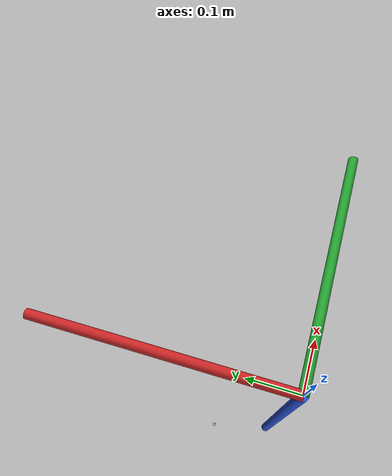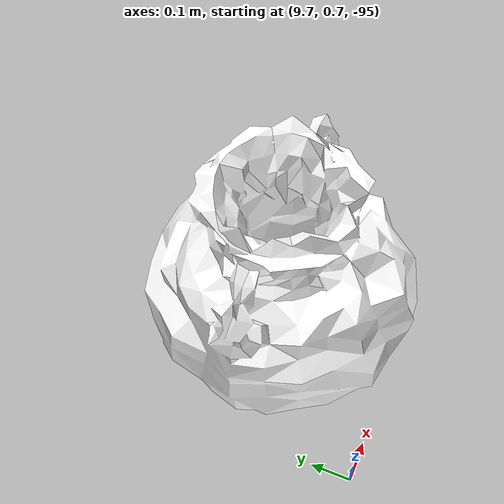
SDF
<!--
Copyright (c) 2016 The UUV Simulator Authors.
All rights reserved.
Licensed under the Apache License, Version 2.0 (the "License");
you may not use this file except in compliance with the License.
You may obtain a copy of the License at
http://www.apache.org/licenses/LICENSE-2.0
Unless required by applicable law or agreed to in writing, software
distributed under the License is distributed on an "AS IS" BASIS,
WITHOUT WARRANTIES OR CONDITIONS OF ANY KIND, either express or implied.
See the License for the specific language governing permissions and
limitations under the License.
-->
<sdf version="1.4">
 <world name="oceans_waves">
  <physics name="default_physics" default="true" type="ode">
   <max_step_size>0.002</max_step_size>
   <real_time_factor>1</real_time_factor>
   <real_time_update_rate>500</real_time_update_rate>
  </physics>
  <scene>
   <ambient>0.01 0.01 0.01 1.0</ambient>
   <sky><clouds><speed>12</speed></clouds></sky>
   <shadows>1</shadows>
  </scene>
  <gravity>0 0 -10</gravity>
  <light type="directional" name="sun1">
   <pose>50 0 150 0 0 0</pose>
   <diffuse>1 1 1 1</diffuse>
   <specular>.1 .1 .1 1</specular>
   <direction>0.3 0.3 -1</direction>
   <cast_shadows>false</cast_shadows>
  </light>
  <light type="directional" name="sun_diffuse">
   <pose>-50 0 -150 0 0 0</pose>
   <diffuse>0.6 0.6 0.6 1</diffuse>
   <specular>0 0 0 1</specular>
   <direction>-0.3 -0.3 -1</direction>
   <cast_shadows>false</cast_shadows>
  </light>
  <include><uri>model://ned_frame</uri></include>
  <include><pose>10 1 -95 0 0 0</pose><uri>model://sunken_vase_distorted</uri><static>true</static></include>
  <plugin name="sc_interface" filename="libuuv_sc_ros_interface_plugin.so"/>
 </world>
</sdf>

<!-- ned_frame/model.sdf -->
<sdf version='1.5'>
    <model name="world_ned">

      <pose>0 0 0 0 0 0</pose>
      <static>true</static>

      <link name="world_ned">
        <gravity>0</gravity>
        <pose>0 0 0 3.14159265359 0 1.5707963267948966</pose>

        <visual name="N_visual">
          <pose>0.25 0 0 1.5707963267948966 0 1.5707963267948966</pose>
          <geometry>
            <cylinder>
              <radius>0.01</radius>
              <length>0.5</length>
            </cylinder>
          </geometry>
          <material>
            <script>
              <uri>file://media/materials/scripts/gazebo.material</uri>
              <name>Gazebo/Red</name>
            </script>
          </material>
        </visual>

        <visual name="E_visual">
          <pose>0 0.25 0 1.5707963267948966 0 0</pose>
          <geometry>
            <cylinder>
              <radius>0.01</radius>
              <length>0.5</length>
            </cylinder>
          </geometry>
          <material>
            <script>
              <uri>file://media/materials/scripts/gazebo.material</uri>
              <name>Gazebo/Green</name>
            </script>
          </material>
        </visual>

        <visual name="D_visual">
          <pose>0 0 0.25 0 0 0</pose>
          <geometry>
            <cylinder>
              <radius>0.01</radius>
              <length>0.5</length>
            </cylinder>
          </geometry>
          <material>
            <script>
              <uri>file://media/materials/scripts/gazebo.material</uri>
              <name>Gazebo/Blue</name>
            </script>
          </material>
        </visual>
      </link>
    </model>
</sdf>

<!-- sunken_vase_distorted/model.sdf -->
<sdf version="1.6">
    <model name="Pot01_distorted">
        <static>false</static>
        <link name="base_link">
            <inertial>
                <pose>0.000000 0.00014473 0.28908009</pose>
                <mass>0.047262</mass>
                <inertia>
                    <ixx>0.002228</ixx>
                    <iyy>0.002315</iyy>
                    <izz>0.002557</izz>
                </inertia>
            </inertial>
            <collision name="collision">
                <pose>0 0 0 0 0 0</pose>
                <geometry>
                    <mesh>
                        <uri>model://sunken_vase_distorted/meshes/Pot01_distort.dae</uri>
                        <scale>1.0 1.0 1.0</scale>
                    </mesh>
                </geometry>
            </collision>
            <visual name="Pot01_distorted_visual">
                <geometry>
                    <mesh>
                        <uri>model://sunken_vase_distorted/meshes/Pot01_distort.dae</uri>
                        <submesh>
                            <name>Pot01</name>
                            <center>false</center>
                        </submesh>
                    </mesh>
                </geometry>
                <material>
                    <diffuse>1.0 1.0 1.0</diffuse>
                    <specular>1.0 1.0 1.0</specular>
                    <pbr>
                        <metal>
                            <albedo_map>https://fuel.gazebosim.org/1.0/cole/models/sunken vase/3/files/materials/textures/Pot01_Albedo.png</albedo_map>
                            <normal_map>https://fuel.gazebosim.org/1.0/cole/models/sunken vase/3/files/materials/textures/Pot01_Normal.png</normal_map>
                            <roughness_map>https://fuel.gazebosim.org/1.0/cole/models/sunken vase/3/files/materials/textures/Pot01_Roughness.png</roughness_map>
                        </metal>
                    </pbr>
                    <!-- fallback to script if no PBR support-->
                    <script>
                        <uri>https://fuel.gazebosim.org/1.0/cole/models/sunken vase/3/files/materials/scripts/</uri>
                        <uri>https://fuel.gazebosim.org/1.0/cole/models/sunken vase/3/files/materials/textures/</uri>
                        <name>UrbanTile/Pot01_Diffuse</name>
                    </script>
                </material>
            </visual>
        </link>
    </model>
</sdf>
